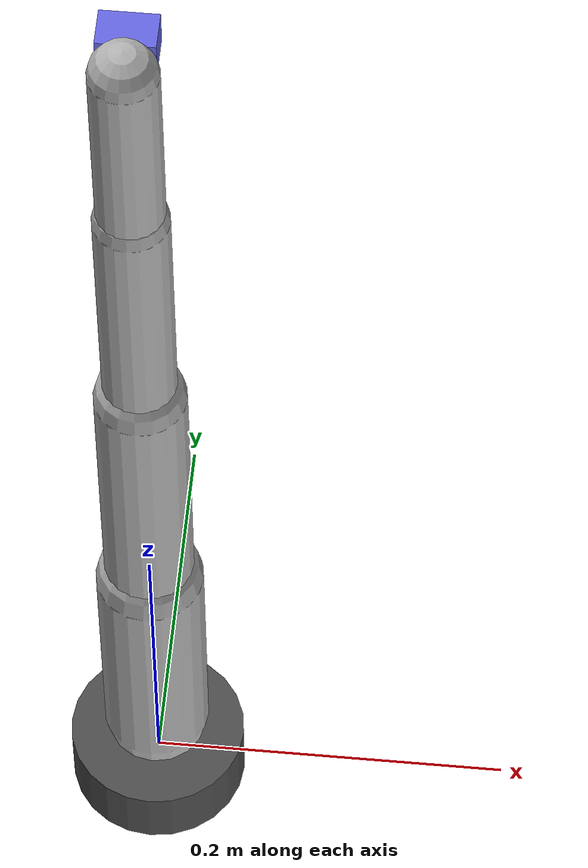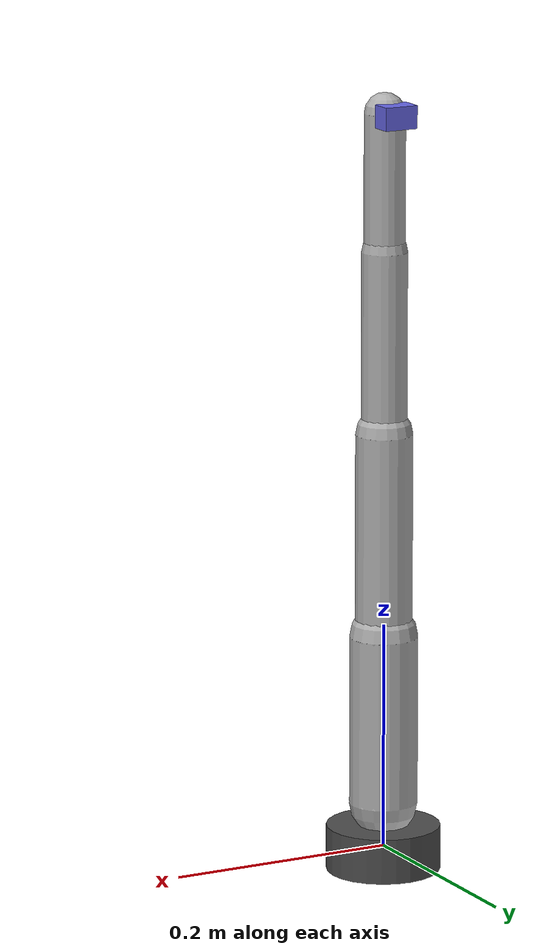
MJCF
<mujoco model="arm4dof">
  <compiler angle="degree" coordinate="local"/>
  <option timestep="0.02" gravity="0 0 -9.81" integrator="RK4"/>
  <default>
    <joint limited="true" damping="1"/>
    <geom friction="1 0.1 0.1" density="300" rgba="0.7 0.7 0.7 1"/>
    <motor ctrllimited="true" ctrlrange="-1 1"/>
  </default>

  <worldbody>
    <body name="base" pos="0 0 0">
      <geom type="cylinder" size="0.05 0.02" rgba="0.3 0.3 0.3 1"/>
      <body name="link1" pos="0 0 0.04">
        <joint name="joint1_yaw" type="hinge" axis="0 0 1" range="-180 180"/>
        <geom type="capsule" fromto="0 0 0 0 0 0.15" size="0.03"/>
        <body name="link2" pos="0 0 0.15">
          <joint name="joint2_pitch" type="hinge" axis="0 1 0" range="-90 90"/>
          <geom type="capsule" fromto="0 0 0 0 0 0.18" size="0.025"/>
          <body name="link3" pos="0 0 0.18">
            <joint name="joint3_pitch" type="hinge" axis="0 1 0" range="-120 120"/>
            <geom type="capsule" fromto="0 0 0 0 0 0.16" size="0.02"/>
            <body name="link4" pos="0 0 0.16">
              <joint name="joint4_pitch" type="hinge" axis="0 1 0" range="-120 120"/>
              <geom type="capsule" fromto="0 0 0 0 0 0.12" size="0.018"/>
              <body name="gripper" pos="0 0 0.12">
                <joint name="gripper_slide" type="slide" axis="0 1 0" range="0 0.04" limited="true"/>
                <geom name="gripper_pad" type="box" size="0.015 0.01 0.01" pos="0 0.02 0" rgba="0.4 0.4 0.9 1"/>
                <site name="tcp" pos="0 0 0" size="0.01" rgba="0 1 0 1"/>
              </body>
            </body>
          </body>
        </body>
      </body>
    </body>
  </worldbody>

  <actuator>
    <motor name="act_joint1" joint="joint1_yaw" gear="60"/>
    <motor name="act_joint2" joint="joint2_pitch" gear="50"/>
    <motor name="act_joint3" joint="joint3_pitch" gear="40"/>
    <motor name="act_joint4" joint="joint4_pitch" gear="30"/>
    <motor name="act_gripper" joint="gripper_slide" gear="10"/>
  </actuator>
</mujoco>
